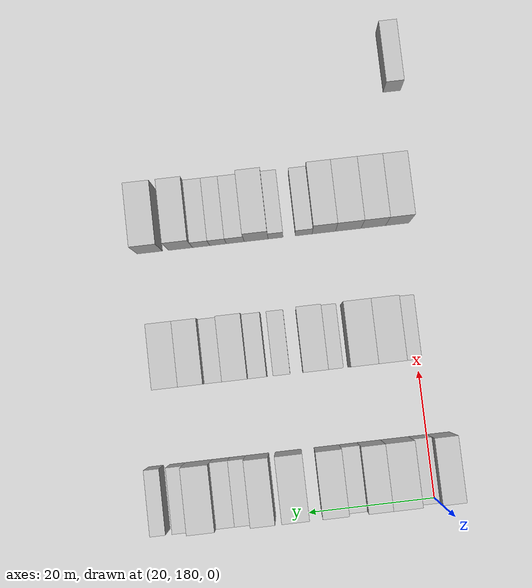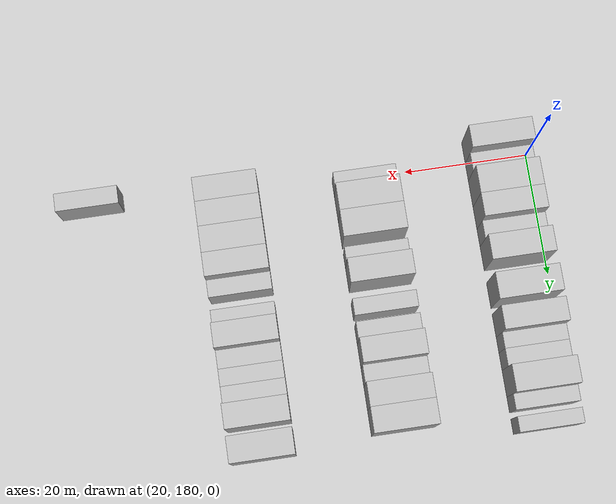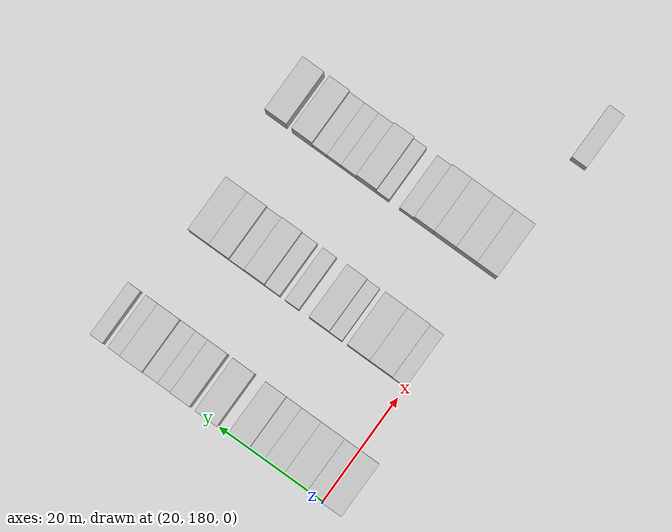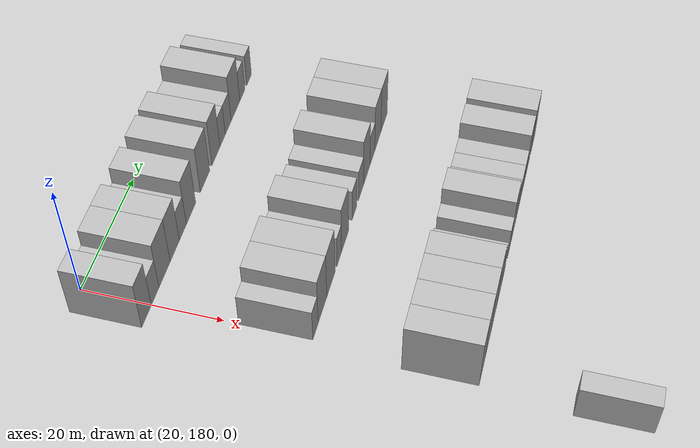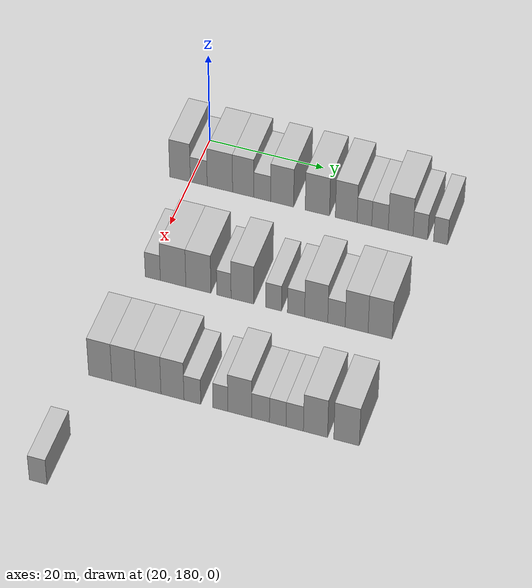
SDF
<sdf version="1.6">
 <world name="default">
  <model name="building_133">
   <static>1</static>
   <pose>25.0000 178.1787 0 0.000000 0.000000 0.000000</pose>
   <link name="link">
    <pose>0 0 4.50 0 0 0</pose>
    <collision name="collision"><geometry><box><size>10.0000 3.6230 9.0000</size></box></geometry></collision>
    <visual name="visual">
     <cast_shadows>0</cast_shadows>
     <geometry><box><size>10.0000 3.6230 9.0000</size></box></geometry>
     <material>
      <script>
       <uri>model://HANNAS_wall/materials/scripts</uri>
       <uri>model://HANNAS_wall/materials/textures</uri>
       <name>vrc/HANNAS_wall</name>
      </script>
     </material>
    </visual>
   </link>
  </model>
  <model name="building_134">
   <static>1</static>
   <pose>25.0000 181.4666 0 0.000000 0.000000 0.000000</pose>
   <link name="link">
    <pose>0 0 3.00 0 0 0</pose>
    <collision name="collision"><geometry><box><size>10.0000 2.9526 6.0000</size></box></geometry></collision>
    <visual name="visual">
     <cast_shadows>0</cast_shadows>
     <geometry><box><size>10.0000 2.9526 6.0000</size></box></geometry>
     <material>
      <script>
       <uri>model://HANNAS_wall/materials/scripts</uri>
       <uri>model://HANNAS_wall/materials/textures</uri>
       <name>vrc/HANNAS_wall</name>
      </script>
     </material>
    </visual>
   </link>
  </model>
  <model name="building_135">
   <static>1</static>
   <pose>25.0000 185.1688 0 0.000000 0.000000 0.000000</pose>
   <link name="link">
    <pose>0 0 4.50 0 0 0</pose>
    <collision name="collision"><geometry><box><size>10.0000 4.4518 9.0000</size></box></geometry></collision>
    <visual name="visual">
     <cast_shadows>0</cast_shadows>
     <geometry><box><size>10.0000 4.4518 9.0000</size></box></geometry>
     <material>
      <script>
       <uri>model://HANNAS_wall/materials/scripts</uri>
       <uri>model://HANNAS_wall/materials/textures</uri>
       <name>vrc/HANNAS_wall</name>
      </script>
     </material>
    </visual>
   </link>
  </model>
  <model name="building_136">
   <static>1</static>
   <pose>25.0000 189.2593 0 0.000000 0.000000 0.000000</pose>
   <link name="link">
    <pose>0 0 4.50 0 0 0</pose>
    <collision name="collision"><geometry><box><size>10.0000 3.7293 9.0000</size></box></geometry></collision>
    <visual name="visual">
     <cast_shadows>0</cast_shadows>
     <geometry><box><size>10.0000 3.7293 9.0000</size></box></geometry>
     <material>
      <script>
       <uri>model://HANNAS_wall/materials/scripts</uri>
       <uri>model://HANNAS_wall/materials/textures</uri>
       <name>vrc/HANNAS_wall</name>
      </script>
     </material>
    </visual>
   </link>
  </model>
  <model name="building_137">
   <static>1</static>
   <pose>25.0000 192.5766 0 0.000000 0.000000 0.000000</pose>
   <link name="link">
    <pose>0 0 3.00 0 0 0</pose>
    <collision name="collision"><geometry><box><size>10.0000 2.9053 6.0000</size></box></geometry></collision>
    <visual name="visual">
     <cast_shadows>0</cast_shadows>
     <geometry><box><size>10.0000 2.9053 6.0000</size></box></geometry>
     <material>
      <script>
       <uri>model://HANNAS_wall/materials/scripts</uri>
       <uri>model://HANNAS_wall/materials/textures</uri>
       <name>vrc/HANNAS_wall</name>
      </script>
     </material>
    </visual>
   </link>
  </model>
  <model name="building_138">
   <static>1</static>
   <pose>25.0000 196.0271 0 0.000000 0.000000 0.000000</pose>
   <link name="link">
    <pose>0 0 4.50 0 0 0</pose>
    <collision name="collision"><geometry><box><size>10.0000 3.9957 9.0000</size></box></geometry></collision>
    <visual name="visual">
     <cast_shadows>0</cast_shadows>
     <geometry><box><size>10.0000 3.9957 9.0000</size></box></geometry>
     <material>
      <script>
       <uri>model://HANNAS_wall/materials/scripts</uri>
       <uri>model://HANNAS_wall/materials/textures</uri>
       <name>vrc/HANNAS_wall</name>
      </script>
     </material>
    </visual>
   </link>
  </model>
  <model name="building_139">
   <static>1</static>
   <pose>25.0000 202.1184 0 0.000000 0.000000 0.000000</pose>
   <link name="link">
    <pose>0 0 4.50 0 0 0</pose>
    <collision name="collision"><geometry><box><size>10.0000 4.1868 9.0000</size></box></geometry></collision>
    <visual name="visual">
     <cast_shadows>0</cast_shadows>
     <geometry><box><size>10.0000 4.1868 9.0000</size></box></geometry>
     <material>
      <script>
       <uri>model://HANNAS_wall/materials/scripts</uri>
       <uri>model://HANNAS_wall/materials/textures</uri>
       <name>vrc/HANNAS_wall</name>
      </script>
     </material>
    </visual>
   </link>
  </model>
  <model name="building_140">
   <static>1</static>
   <pose>25.0000 207.0760 0 0.000000 0.000000 0.000000</pose>
   <link name="link">
    <pose>0 0 4.50 0 0 0</pose>
    <collision name="collision"><geometry><box><size>10.0000 3.7285 9.0000</size></box></geometry></collision>
    <visual name="visual">
     <cast_shadows>0</cast_shadows>
     <geometry><box><size>10.0000 3.7285 9.0000</size></box></geometry>
     <material>
      <script>
       <uri>model://HANNAS_wall/materials/scripts</uri>
       <uri>model://HANNAS_wall/materials/textures</uri>
       <name>vrc/HANNAS_wall</name>
      </script>
     </material>
    </visual>
   </link>
  </model>
  <model name="building_141">
   <static>1</static>
   <pose>25.0000 210.2023 0 0.000000 0.000000 0.000000</pose>
   <link name="link">
    <pose>0 0 3.00 0 0 0</pose>
    <collision name="collision"><geometry><box><size>10.0000 2.5241 6.0000</size></box></geometry></collision>
    <visual name="visual">
     <cast_shadows>0</cast_shadows>
     <geometry><box><size>10.0000 2.5241 6.0000</size></box></geometry>
     <material>
      <script>
       <uri>model://HANNAS_wall/materials/scripts</uri>
       <uri>model://HANNAS_wall/materials/textures</uri>
       <name>vrc/HANNAS_wall</name>
      </script>
     </material>
    </visual>
   </link>
  </model>
  <model name="building_142">
   <static>1</static>
   <pose>25.0000 212.8677 0 0.000000 0.000000 0.000000</pose>
   <link name="link">
    <pose>0 0 3.00 0 0 0</pose>
    <collision name="collision"><geometry><box><size>10.0000 2.8066 6.0000</size></box></geometry></collision>
    <visual name="visual">
     <cast_shadows>0</cast_shadows>
     <geometry><box><size>10.0000 2.8066 6.0000</size></box></geometry>
     <material>
      <script>
       <uri>model://HANNAS_wall/materials/scripts</uri>
       <uri>model://HANNAS_wall/materials/textures</uri>
       <name>vrc/HANNAS_wall</name>
      </script>
     </material>
    </visual>
   </link>
  </model>
  <model name="building_143">
   <static>1</static>
   <pose>25.0000 216.3794 0 0.000000 0.000000 0.000000</pose>
   <link name="link">
    <pose>0 0 4.50 0 0 0</pose>
    <collision name="collision"><geometry><box><size>10.0000 4.2169 9.0000</size></box></geometry></collision>
    <visual name="visual">
     <cast_shadows>0</cast_shadows>
     <geometry><box><size>10.0000 4.2169 9.0000</size></box></geometry>
     <material>
      <script>
       <uri>model://HANNAS_wall/materials/scripts</uri>
       <uri>model://HANNAS_wall/materials/textures</uri>
       <name>vrc/HANNAS_wall</name>
      </script>
     </material>
    </visual>
   </link>
  </model>
  <model name="building_144">
   <static>1</static>
   <pose>25.0000 219.7344 0 0.000000 0.000000 0.000000</pose>
   <link name="link">
    <pose>0 0 3.00 0 0 0</pose>
    <collision name="collision"><geometry><box><size>10.0000 2.4931 6.0000</size></box></geometry></collision>
    <visual name="visual">
     <cast_shadows>0</cast_shadows>
     <geometry><box><size>10.0000 2.4931 6.0000</size></box></geometry>
     <material>
      <script>
       <uri>model://HANNAS_wall/materials/scripts</uri>
       <uri>model://HANNAS_wall/materials/textures</uri>
       <name>vrc/HANNAS_wall</name>
      </script>
     </material>
    </visual>
   </link>
  </model>
  <model name="building_145">
   <static>1</static>
   <pose>25.0000 223.1831 0 0.000000 0.000000 0.000000</pose>
   <link name="link">
    <pose>0 0 3.00 0 0 0</pose>
    <collision name="collision"><geometry><box><size>10.0000 2.4042 6.0000</size></box></geometry></collision>
    <visual name="visual">
     <cast_shadows>0</cast_shadows>
     <geometry><box><size>10.0000 2.4042 6.0000</size></box></geometry>
     <material>
      <script>
       <uri>model://HANNAS_wall/materials/scripts</uri>
       <uri>model://HANNAS_wall/materials/textures</uri>
       <name>vrc/HANNAS_wall</name>
      </script>
     </material>
    </visual>
   </link>
  </model>
  <model name="building_326">
   <static>1</static>
   <pose>47.0000 181.2632 0 0.000000 0.000000 0.000000</pose>
   <link name="link">
    <pose>0 0 3.00 0 0 0</pose>
    <collision name="collision"><geometry><box><size>10.0000 2.5827 6.0000</size></box></geometry></collision>
    <visual name="visual">
     <cast_shadows>0</cast_shadows>
     <geometry><box><size>10.0000 2.5827 6.0000</size></box></geometry>
     <material>
      <script>
       <uri>model://HANNAS_wall/materials/scripts</uri>
       <uri>model://HANNAS_wall/materials/textures</uri>
       <name>vrc/HANNAS_wall</name>
      </script>
     </material>
    </visual>
   </link>
  </model>
  <model name="building_327">
   <static>1</static>
   <pose>47.0000 184.7302 0 0.000000 0.000000 0.000000</pose>
   <link name="link">
    <pose>0 0 4.50 0 0 0</pose>
    <collision name="collision"><geometry><box><size>10.0000 4.3514 9.0000</size></box></geometry></collision>
    <visual name="visual">
     <cast_shadows>0</cast_shadows>
     <geometry><box><size>10.0000 4.3514 9.0000</size></box></geometry>
     <material>
      <script>
       <uri>model://HANNAS_wall/materials/scripts</uri>
       <uri>model://HANNAS_wall/materials/textures</uri>
       <name>vrc/HANNAS_wall</name>
      </script>
     </material>
    </visual>
   </link>
  </model>
  <model name="building_328">
   <static>1</static>
   <pose>47.0000 189.0350 0 0.000000 0.000000 0.000000</pose>
   <link name="link">
    <pose>0 0 4.50 0 0 0</pose>
    <collision name="collision"><geometry><box><size>10.0000 4.2582 9.0000</size></box></geometry></collision>
    <visual name="visual">
     <cast_shadows>0</cast_shadows>
     <geometry><box><size>10.0000 4.2582 9.0000</size></box></geometry>
     <material>
      <script>
       <uri>model://HANNAS_wall/materials/scripts</uri>
       <uri>model://HANNAS_wall/materials/textures</uri>
       <name>vrc/HANNAS_wall</name>
      </script>
     </material>
    </visual>
   </link>
  </model>
  <model name="building_329">
   <static>1</static>
   <pose>47.0000 193.3698 0 0.000000 0.000000 0.000000</pose>
   <link name="link">
    <pose>0 0 3.00 0 0 0</pose>
    <collision name="collision"><geometry><box><size>10.0000 2.4115 6.0000</size></box></geometry></collision>
    <visual name="visual">
     <cast_shadows>0</cast_shadows>
     <geometry><box><size>10.0000 2.4115 6.0000</size></box></geometry>
     <material>
      <script>
       <uri>model://HANNAS_wall/materials/scripts</uri>
       <uri>model://HANNAS_wall/materials/textures</uri>
       <name>vrc/HANNAS_wall</name>
      </script>
     </material>
    </visual>
   </link>
  </model>
  <model name="building_330">
   <static>1</static>
   <pose>47.0000 196.5013 0 0.000000 0.000000 0.000000</pose>
   <link name="link">
    <pose>0 0 4.50 0 0 0</pose>
    <collision name="collision"><geometry><box><size>10.0000 3.8514 9.0000</size></box></geometry></collision>
    <visual name="visual">
     <cast_shadows>0</cast_shadows>
     <geometry><box><size>10.0000 3.8514 9.0000</size></box></geometry>
     <material>
      <script>
       <uri>model://HANNAS_wall/materials/scripts</uri>
       <uri>model://HANNAS_wall/materials/textures</uri>
       <name>vrc/HANNAS_wall</name>
      </script>
     </material>
    </visual>
   </link>
  </model>
  <model name="building_331">
   <static>1</static>
   <pose>47.0000 201.7512 0 0.000000 0.000000 0.000000</pose>
   <link name="link">
    <pose>0 0 3.00 0 0 0</pose>
    <collision name="collision"><geometry><box><size>10.0000 2.6484 6.0000</size></box></geometry></collision>
    <visual name="visual">
     <cast_shadows>0</cast_shadows>
     <geometry><box><size>10.0000 2.6484 6.0000</size></box></geometry>
     <material>
      <script>
       <uri>model://HANNAS_wall/materials/scripts</uri>
       <uri>model://HANNAS_wall/materials/textures</uri>
       <name>vrc/HANNAS_wall</name>
      </script>
     </material>
    </visual>
   </link>
  </model>
  <model name="building_332">
   <static>1</static>
   <pose>47.0000 205.5141 0 0.000000 0.000000 0.000000</pose>
   <link name="link">
    <pose>0 0 3.00 0 0 0</pose>
    <collision name="collision"><geometry><box><size>10.0000 2.8774 6.0000</size></box></geometry></collision>
    <visual name="visual">
     <cast_shadows>0</cast_shadows>
     <geometry><box><size>10.0000 2.8774 6.0000</size></box></geometry>
     <material>
      <script>
       <uri>model://HANNAS_wall/materials/scripts</uri>
       <uri>model://HANNAS_wall/materials/textures</uri>
       <name>vrc/HANNAS_wall</name>
      </script>
     </material>
    </visual>
   </link>
  </model>
  <model name="building_333">
   <static>1</static>
   <pose>47.0000 208.8849 0 0.000000 0.000000 0.000000</pose>
   <link name="link">
    <pose>0 0 4.50 0 0 0</pose>
    <collision name="collision"><geometry><box><size>10.0000 3.8641 9.0000</size></box></geometry></collision>
    <visual name="visual">
     <cast_shadows>0</cast_shadows>
     <geometry><box><size>10.0000 3.8641 9.0000</size></box></geometry>
     <material>
      <script>
       <uri>model://HANNAS_wall/materials/scripts</uri>
       <uri>model://HANNAS_wall/materials/textures</uri>
       <name>vrc/HANNAS_wall</name>
      </script>
     </material>
    </visual>
   </link>
  </model>
  <model name="building_334">
   <static>1</static>
   <pose>47.0000 212.2632 0 0.000000 0.000000 0.000000</pose>
   <link name="link">
    <pose>0 0 3.00 0 0 0</pose>
    <collision name="collision"><geometry><box><size>10.0000 2.8924 6.0000</size></box></geometry></collision>
    <visual name="visual">
     <cast_shadows>0</cast_shadows>
     <geometry><box><size>10.0000 2.8924 6.0000</size></box></geometry>
     <material>
      <script>
       <uri>model://HANNAS_wall/materials/scripts</uri>
       <uri>model://HANNAS_wall/materials/textures</uri>
       <name>vrc/HANNAS_wall</name>
      </script>
     </material>
    </visual>
   </link>
  </model>
  <model name="building_335">
   <static>1</static>
   <pose>47.0000 215.6080 0 0.000000 0.000000 0.000000</pose>
   <link name="link">
    <pose>0 0 4.50 0 0 0</pose>
    <collision name="collision"><geometry><box><size>10.0000 3.7972 9.0000</size></box></geometry></collision>
    <visual name="visual">
     <cast_shadows>0</cast_shadows>
     <geometry><box><size>10.0000 3.7972 9.0000</size></box></geometry>
     <material>
      <script>
       <uri>model://HANNAS_wall/materials/scripts</uri>
       <uri>model://HANNAS_wall/materials/textures</uri>
       <name>vrc/HANNAS_wall</name>
      </script>
     </material>
    </visual>
   </link>
  </model>
  <model name="building_336">
   <static>1</static>
   <pose>47.0000 219.4972 0 0.000000 0.000000 0.000000</pose>
   <link name="link">
    <pose>0 0 4.50 0 0 0</pose>
    <collision name="collision"><geometry><box><size>10.0000 3.9813 9.0000</size></box></geometry></collision>
    <visual name="visual">
     <cast_shadows>0</cast_shadows>
     <geometry><box><size>10.0000 3.9813 9.0000</size></box></geometry>
     <material>
      <script>
       <uri>model://HANNAS_wall/materials/scripts</uri>
       <uri>model://HANNAS_wall/materials/textures</uri>
       <name>vrc/HANNAS_wall</name>
      </script>
     </material>
    </visual>
   </link>
  </model>
  <model name="building_524">
   <static>1</static>
   <pose>69.0000 180.4365 0 0.000000 0.000000 0.000000</pose>
   <link name="link">
    <pose>0 0 4.50 0 0 0</pose>
    <collision name="collision"><geometry><box><size>10.0000 3.8685 9.0000</size></box></geometry></collision>
    <visual name="visual">
     <cast_shadows>0</cast_shadows>
     <geometry><box><size>10.0000 3.8685 9.0000</size></box></geometry>
     <material>
      <script>
       <uri>model://HANNAS_wall/materials/scripts</uri>
       <uri>model://HANNAS_wall/materials/textures</uri>
       <name>vrc/HANNAS_wall</name>
      </script>
     </material>
    </visual>
   </link>
  </model>
  <model name="building_525">
   <static>1</static>
   <pose>69.0000 184.3550 0 0.000000 0.000000 0.000000</pose>
   <link name="link">
    <pose>0 0 4.50 0 0 0</pose>
    <collision name="collision"><geometry><box><size>10.0000 3.9685 9.0000</size></box></geometry></collision>
    <visual name="visual">
     <cast_shadows>0</cast_shadows>
     <geometry><box><size>10.0000 3.9685 9.0000</size></box></geometry>
     <material>
      <script>
       <uri>model://HANNAS_wall/materials/scripts</uri>
       <uri>model://HANNAS_wall/materials/textures</uri>
       <name>vrc/HANNAS_wall</name>
      </script>
     </material>
    </visual>
   </link>
  </model>
  <model name="building_526">
   <static>1</static>
   <pose>69.0000 188.4252 0 0.000000 0.000000 0.000000</pose>
   <link name="link">
    <pose>0 0 4.50 0 0 0</pose>
    <collision name="collision"><geometry><box><size>10.0000 4.1720 9.0000</size></box></geometry></collision>
    <visual name="visual">
     <cast_shadows>0</cast_shadows>
     <geometry><box><size>10.0000 4.1720 9.0000</size></box></geometry>
     <material>
      <script>
       <uri>model://HANNAS_wall/materials/scripts</uri>
       <uri>model://HANNAS_wall/materials/textures</uri>
       <name>vrc/HANNAS_wall</name>
      </script>
     </material>
    </visual>
   </link>
  </model>
  <model name="building_527">
   <static>1</static>
   <pose>69.0000 192.4057 0 0.000000 0.000000 0.000000</pose>
   <link name="link">
    <pose>0 0 4.50 0 0 0</pose>
    <collision name="collision"><geometry><box><size>10.0000 3.7891 9.0000</size></box></geometry></collision>
    <visual name="visual">
     <cast_shadows>0</cast_shadows>
     <geometry><box><size>10.0000 3.7891 9.0000</size></box></geometry>
     <material>
      <script>
       <uri>model://HANNAS_wall/materials/scripts</uri>
       <uri>model://HANNAS_wall/materials/textures</uri>
       <name>vrc/HANNAS_wall</name>
      </script>
     </material>
    </visual>
   </link>
  </model>
  <model name="building_528">
   <static>1</static>
   <pose>69.0000 195.6791 0 0.000000 0.000000 0.000000</pose>
   <link name="link">
    <pose>0 0 3.00 0 0 0</pose>
    <collision name="collision"><geometry><box><size>10.0000 2.7577 6.0000</size></box></geometry></collision>
    <visual name="visual">
     <cast_shadows>0</cast_shadows>
     <geometry><box><size>10.0000 2.7577 6.0000</size></box></geometry>
     <material>
      <script>
       <uri>model://HANNAS_wall/materials/scripts</uri>
       <uri>model://HANNAS_wall/materials/textures</uri>
       <name>vrc/HANNAS_wall</name>
      </script>
     </material>
    </visual>
   </link>
  </model>
  <model name="building_529">
   <static>1</static>
   <pose>69.0000 200.2730 0 0.000000 0.000000 0.000000</pose>
   <link name="link">
    <pose>0 0 3.00 0 0 0</pose>
    <collision name="collision"><geometry><box><size>10.0000 2.4300 6.0000</size></box></geometry></collision>
    <visual name="visual">
     <cast_shadows>0</cast_shadows>
     <geometry><box><size>10.0000 2.4300 6.0000</size></box></geometry>
     <material>
      <script>
       <uri>model://HANNAS_wall/materials/scripts</uri>
       <uri>model://HANNAS_wall/materials/textures</uri>
       <name>vrc/HANNAS_wall</name>
      </script>
     </material>
    </visual>
   </link>
  </model>
  <model name="building_530">
   <static>1</static>
   <pose>69.0000 203.4277 0 0.000000 0.000000 0.000000</pose>
   <link name="link">
    <pose>0 0 4.50 0 0 0</pose>
    <collision name="collision"><geometry><box><size>10.0000 3.8795 9.0000</size></box></geometry></collision>
    <visual name="visual">
     <cast_shadows>0</cast_shadows>
     <geometry><box><size>10.0000 3.8795 9.0000</size></box></geometry>
     <material>
      <script>
       <uri>model://HANNAS_wall/materials/scripts</uri>
       <uri>model://HANNAS_wall/materials/textures</uri>
       <name>vrc/HANNAS_wall</name>
      </script>
     </material>
    </visual>
   </link>
  </model>
  <model name="building_531">
   <static>1</static>
   <pose>69.0000 206.8254 0 0.000000 0.000000 0.000000</pose>
   <link name="link">
    <pose>0 0 3.00 0 0 0</pose>
    <collision name="collision"><geometry><box><size>10.0000 2.9157 6.0000</size></box></geometry></collision>
    <visual name="visual">
     <cast_shadows>0</cast_shadows>
     <geometry><box><size>10.0000 2.9157 6.0000</size></box></geometry>
     <material>
      <script>
       <uri>model://HANNAS_wall/materials/scripts</uri>
       <uri>model://HANNAS_wall/materials/textures</uri>
       <name>vrc/HANNAS_wall</name>
      </script>
     </material>
    </visual>
   </link>
  </model>
  <model name="building_532">
   <static>1</static>
   <pose>69.0000 209.6304 0 0.000000 0.000000 0.000000</pose>
   <link name="link">
    <pose>0 0 3.00 0 0 0</pose>
    <collision name="collision"><geometry><box><size>10.0000 2.6943 6.0000</size></box></geometry></collision>
    <visual name="visual">
     <cast_shadows>0</cast_shadows>
     <geometry><box><size>10.0000 2.6943 6.0000</size></box></geometry>
     <material>
      <script>
       <uri>model://HANNAS_wall/materials/scripts</uri>
       <uri>model://HANNAS_wall/materials/textures</uri>
       <name>vrc/HANNAS_wall</name>
      </script>
     </material>
    </visual>
   </link>
  </model>
  <model name="building_533">
   <static>1</static>
   <pose>69.0000 212.3847 0 0.000000 0.000000 0.000000</pose>
   <link name="link">
    <pose>0 0 3.00 0 0 0</pose>
    <collision name="collision"><geometry><box><size>10.0000 2.8143 6.0000</size></box></geometry></collision>
    <visual name="visual">
     <cast_shadows>0</cast_shadows>
     <geometry><box><size>10.0000 2.8143 6.0000</size></box></geometry>
     <material>
      <script>
       <uri>model://HANNAS_wall/materials/scripts</uri>
       <uri>model://HANNAS_wall/materials/textures</uri>
       <name>vrc/HANNAS_wall</name>
      </script>
     </material>
    </visual>
   </link>
  </model>
  <model name="building_534">
   <static>1</static>
   <pose>69.0000 215.7409 0 0.000000 0.000000 0.000000</pose>
   <link name="link">
    <pose>0 0 4.50 0 0 0</pose>
    <collision name="collision"><geometry><box><size>10.0000 3.8981 9.0000</size></box></geometry></collision>
    <visual name="visual">
     <cast_shadows>0</cast_shadows>
     <geometry><box><size>10.0000 3.8981 9.0000</size></box></geometry>
     <material>
      <script>
       <uri>model://HANNAS_wall/materials/scripts</uri>
       <uri>model://HANNAS_wall/materials/textures</uri>
       <name>vrc/HANNAS_wall</name>
      </script>
     </material>
    </visual>
   </link>
  </model>
  <model name="building_535">
   <static>1</static>
   <pose>69.0000 220.7416 0 0.000000 0.000000 0.000000</pose>
   <link name="link">
    <pose>0 0 4.50 0 0 0</pose>
    <collision name="collision"><geometry><box><size>10.0000 4.1033 9.0000</size></box></geometry></collision>
    <visual name="visual">
     <cast_shadows>0</cast_shadows>
     <geometry><box><size>10.0000 4.1033 9.0000</size></box></geometry>
     <material>
      <script>
       <uri>model://HANNAS_wall/materials/scripts</uri>
       <uri>model://HANNAS_wall/materials/textures</uri>
       <name>vrc/HANNAS_wall</name>
      </script>
     </material>
    </visual>
   </link>
  </model>
  <model name="building_700">
   <static>1</static>
   <pose>91.0000 178.5679 0 0.000000 0.000000 0.000000</pose>
   <link name="link">
    <pose>0 0 3.00 0 0 0</pose>
    <collision name="collision"><geometry><box><size>10.0000 2.8789 6.0000</size></box></geometry></collision>
    <visual name="visual">
     <cast_shadows>0</cast_shadows>
     <geometry><box><size>10.0000 2.8789 6.0000</size></box></geometry>
     <material>
      <script>
       <uri>model://HANNAS_wall/materials/scripts</uri>
       <uri>model://HANNAS_wall/materials/textures</uri>
       <name>vrc/HANNAS_wall</name>
      </script>
     </material>
    </visual>
   </link>
  </model>
 </world>
</sdf>
